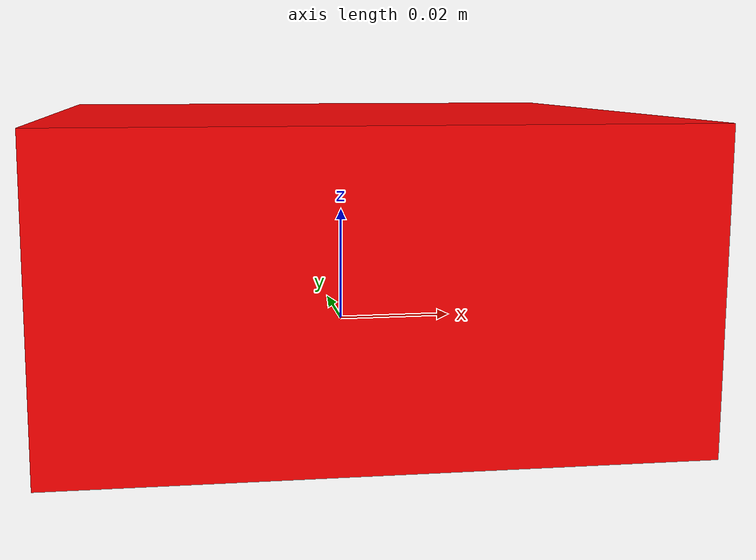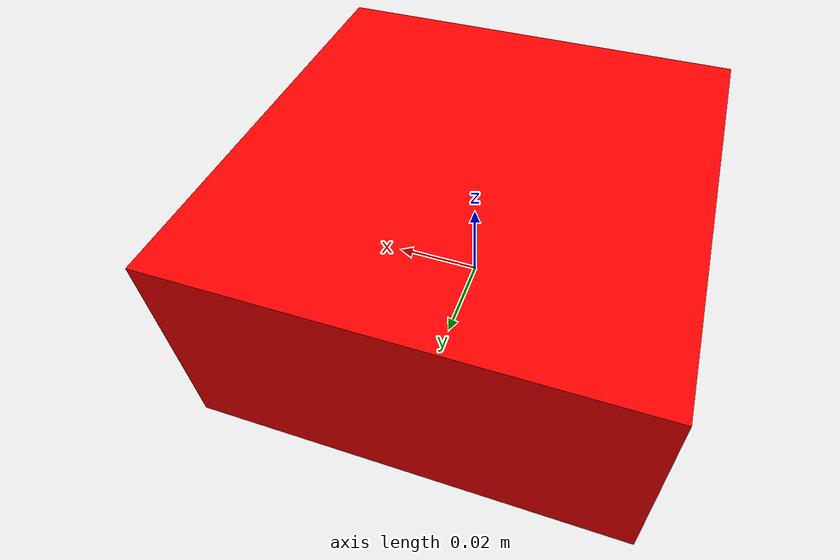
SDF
<?xml version='1.0'?>
<sdf version='1.5'>
    <model name="Caja CCOSS">
        <link name="link">
            <pose>0 0 0.0125 0 0 0</pose>
            <inertial>
                <mass>0.200</mass>
                <inertia>
                    <ixx>0.300</ixx>
                    <ixy>0</ixy>
                    <ixz>0</ixz>
                    <iyy>0.300</iyy>
                    <iyz>0</iyz>
                    <izz>0.100</izz>
                </inertia>
            </inertial>
            <collision name="collision">
                <geometry>
                    <box>
                        <size> 0.10 0.10 0.05 </size>
                    </box>
                </geometry>
            </collision>
            <visual name="visual">
                <geometry>
                    <box>
                        <size> 0.10 0.10 0.05 </size>
                    </box>
                </geometry>
                <material>
                    <diffuse>1 0 0 1</diffuse>
                    <specular>1 0 0 1</specular>
                    <emissive>1 0 0 1</emissive>
                </material>
            </visual>
        </link>
    </model>
</sdf>
